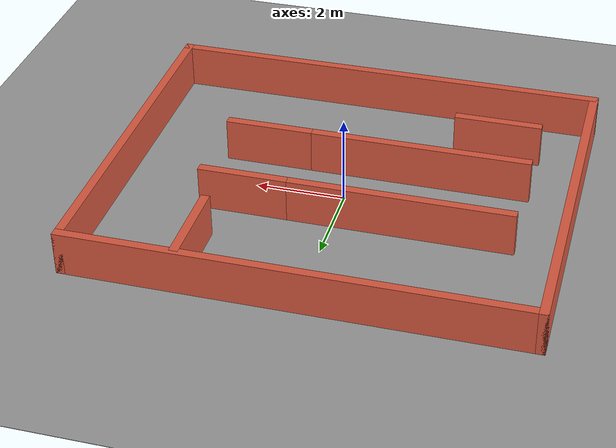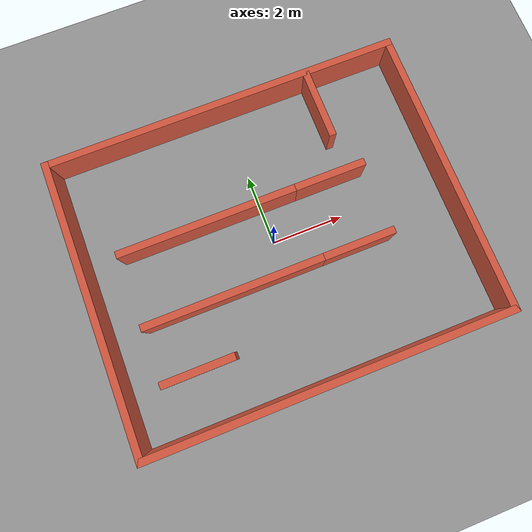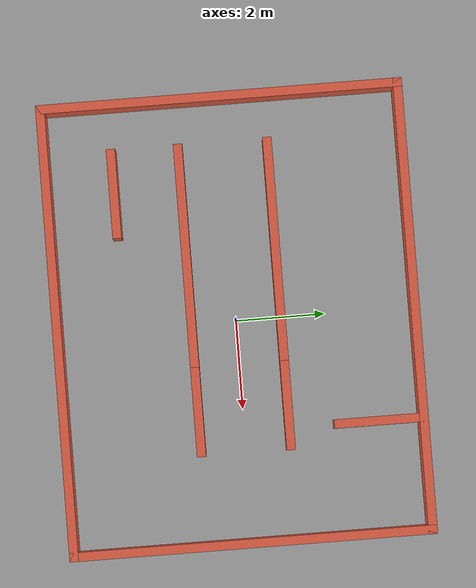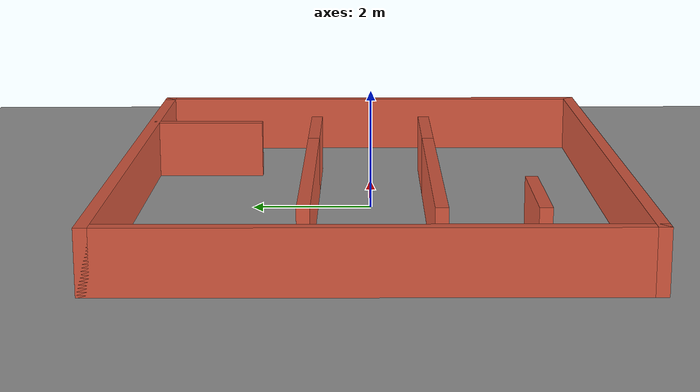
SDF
<?xml version="1.0" ?>
<!-- 由 tools/gen_scene.py 自动生成，请勿手改；改 src/lidar_mcl_localization/scene_layout.py 后重新生成 -->
<sdf version="1.6">
  <world name="mcl_room">

    <physics type="ode">
      <max_step_size>0.001</max_step_size>
      <real_time_factor>1.0</real_time_factor>
      <real_time_update_rate>1000</real_time_update_rate>
    </physics>

    <!-- 光照与全局参数：全部内联，避免 model:// 下载 -->
    <light type="directional" name="sun">
      <cast_shadows>false</cast_shadows>
      <pose>0 0 10 0 0 0</pose>
      <diffuse>0.9 0.9 0.9 1</diffuse>
      <specular>0.1 0.1 0.1 1</specular>
      <direction>-0.4 0.3 -0.9</direction>
    </light>

    <scene>
      <ambient>0.5 0.5 0.5 1</ambient>
      <background>0.75 0.75 0.78 1</background>
      <shadows>false</shadows>
    </scene>

    <!-- 地面：一个巨大的薄盒子，代替 model://ground_plane -->
    <model name="ground">
      <static>true</static>
      <pose>0 0 -0.005 0 0 0</pose>
      <link name="link">
        <collision name="collision">
          <geometry><box><size>40 40 0.01</size></box></geometry>
          <surface>
            <friction><ode><mu>1.0</mu><mu2>1.0</mu2></ode></friction>
          </surface>
        </collision>
        <visual name="visual">
          <geometry><box><size>40 40 0.01</size></box></geometry>
          <material><ambient>0.6 0.6 0.6 1</ambient><diffuse>0.6 0.6 0.6 1</diffuse></material>
        </visual>
      </link>
    </model>

    <!-- 墙体：由 WALLS 逐条生成 -->
    <model name="wall_0">
      <static>true</static>
      <pose>0.0000 4.0000 0.5000 0 0 0</pose>
      <link name="link">
        <collision name="collision">
          <geometry><box><size>10.2000 0.2000 1.0000</size></box></geometry>
        </collision>
        <visual name="visual">
          <geometry><box><size>10.2000 0.2000 1.0000</size></box></geometry>
          <material>
            <ambient>0.85 0.35 0.25 1</ambient>
            <diffuse>0.85 0.35 0.25 1</diffuse>
          </material>
        </visual>
      </link>
    </model>

    <model name="wall_1">
      <static>true</static>
      <pose>0.0000 -4.0000 0.5000 0 0 0</pose>
      <link name="link">
        <collision name="collision">
          <geometry><box><size>10.2000 0.2000 1.0000</size></box></geometry>
        </collision>
        <visual name="visual">
          <geometry><box><size>10.2000 0.2000 1.0000</size></box></geometry>
          <material>
            <ambient>0.85 0.35 0.25 1</ambient>
            <diffuse>0.85 0.35 0.25 1</diffuse>
          </material>
        </visual>
      </link>
    </model>

    <model name="wall_2">
      <static>true</static>
      <pose>5.0000 0.0000 0.5000 0 0 0</pose>
      <link name="link">
        <collision name="collision">
          <geometry><box><size>0.2000 8.2000 1.0000</size></box></geometry>
        </collision>
        <visual name="visual">
          <geometry><box><size>0.2000 8.2000 1.0000</size></box></geometry>
          <material>
            <ambient>0.85 0.35 0.25 1</ambient>
            <diffuse>0.85 0.35 0.25 1</diffuse>
          </material>
        </visual>
      </link>
    </model>

    <model name="wall_3">
      <static>true</static>
      <pose>-5.0000 0.0000 0.5000 0 0 0</pose>
      <link name="link">
        <collision name="collision">
          <geometry><box><size>0.2000 8.2000 1.0000</size></box></geometry>
        </collision>
        <visual name="visual">
          <geometry><box><size>0.2000 8.2000 1.0000</size></box></geometry>
          <material>
            <ambient>0.85 0.35 0.25 1</ambient>
            <diffuse>0.85 0.35 0.25 1</diffuse>
          </material>
        </visual>
      </link>
    </model>

    <model name="wall_4">
      <static>true</static>
      <pose>-1.5000 1.0000 0.5000 0 0 0</pose>
      <link name="link">
        <collision name="collision">
          <geometry><box><size>5.0000 0.2000 1.0000</size></box></geometry>
        </collision>
        <visual name="visual">
          <geometry><box><size>5.0000 0.2000 1.0000</size></box></geometry>
          <material>
            <ambient>0.85 0.35 0.25 1</ambient>
            <diffuse>0.85 0.35 0.25 1</diffuse>
          </material>
        </visual>
      </link>
    </model>

    <model name="wall_5">
      <static>true</static>
      <pose>2.0000 1.0000 0.5000 0 0 0</pose>
      <link name="link">
        <collision name="collision">
          <geometry><box><size>2.0000 0.2000 1.0000</size></box></geometry>
        </collision>
        <visual name="visual">
          <geometry><box><size>2.0000 0.2000 1.0000</size></box></geometry>
          <material>
            <ambient>0.85 0.35 0.25 1</ambient>
            <diffuse>0.85 0.35 0.25 1</diffuse>
          </material>
        </visual>
      </link>
    </model>

    <model name="wall_6">
      <static>true</static>
      <pose>-1.5000 -1.0000 0.5000 0 0 0</pose>
      <link name="link">
        <collision name="collision">
          <geometry><box><size>5.0000 0.2000 1.0000</size></box></geometry>
        </collision>
        <visual name="visual">
          <geometry><box><size>5.0000 0.2000 1.0000</size></box></geometry>
          <material>
            <ambient>0.85 0.35 0.25 1</ambient>
            <diffuse>0.85 0.35 0.25 1</diffuse>
          </material>
        </visual>
      </link>
    </model>

    <model name="wall_7">
      <static>true</static>
      <pose>2.0000 -1.0000 0.5000 0 0 0</pose>
      <link name="link">
        <collision name="collision">
          <geometry><box><size>2.0000 0.2000 1.0000</size></box></geometry>
        </collision>
        <visual name="visual">
          <geometry><box><size>2.0000 0.2000 1.0000</size></box></geometry>
          <material>
            <ambient>0.85 0.35 0.25 1</ambient>
            <diffuse>0.85 0.35 0.25 1</diffuse>
          </material>
        </visual>
      </link>
    </model>

    <model name="wall_8">
      <static>true</static>
      <pose>2.5000 3.0000 0.5000 0 0 0</pose>
      <link name="link">
        <collision name="collision">
          <geometry><box><size>0.2000 2.0000 1.0000</size></box></geometry>
        </collision>
        <visual name="visual">
          <geometry><box><size>0.2000 2.0000 1.0000</size></box></geometry>
          <material>
            <ambient>0.85 0.35 0.25 1</ambient>
            <diffuse>0.85 0.35 0.25 1</diffuse>
          </material>
        </visual>
      </link>
    </model>

    <model name="wall_9">
      <static>true</static>
      <pose>-3.0000 -2.5000 0.5000 0 0 0</pose>
      <link name="link">
        <collision name="collision">
          <geometry><box><size>2.0000 0.2000 1.0000</size></box></geometry>
        </collision>
        <visual name="visual">
          <geometry><box><size>2.0000 0.2000 1.0000</size></box></geometry>
          <material>
            <ambient>0.85 0.35 0.25 1</ambient>
            <diffuse>0.85 0.35 0.25 1</diffuse>
          </material>
        </visual>
      </link>
    </model>

  </world>
</sdf>
